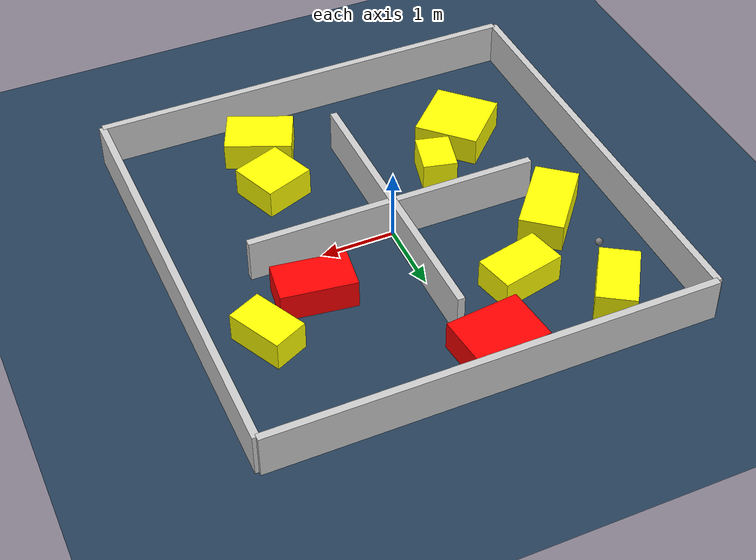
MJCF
<?xml version="1.0" ?>
<mujoco model="generated_environment">
  <option timestep="0.01" integrator="RK4" cone="elliptic"/>
  <default>
    <geom density="1"/>
  </default>
  <asset>
    <texture builtin="gradient" height="3072" rgb1="0.3 0.5 0.7" rgb2="0 0 0" type="skybox" width="512"/>
    <texture builtin="checker" height="300" mark="edge" markrgb="0.8 0.8 0.8" name="groundplane" rgb1="0.2 0.3 0.4" rgb2="0.1 0.2 0.3" type="2d" width="300"/>
    <material name="groundplane" reflectance="0.2" texrepeat="5 5" texture="groundplane" texuniform="true"/>
    <material name="robot" rgba="0.0 1.0 0.0 1"/>
  </asset>
  <worldbody>
    <light dir="0 0 -1" directional="true" pos="0 0 1.5"/>
    <geom condim="4" friction="1.0 0.005 0.001" material="groundplane" name="floor" size="0 0 0.05" type="plane"/>
    <body name="walls">
      <geom name="wall_1" condim="4" pos="-3.0 0.0 0.3" rgba="0.800000011920929 0.800000011920929 0.800000011920929 1.0" size="0.05 3.0 0.3" type="box"/>
      <geom name="wall_2" condim="4" pos="3.0 0.0 0.3" rgba="0.800000011920929 0.800000011920929 0.800000011920929 1.0" size="0.05 3.0 0.3" type="box"/>
      <geom name="wall_3" condim="4" pos="0.0 -3.0 0.3" rgba="0.800000011920929 0.800000011920929 0.800000011920929 1.0" size="3.0 0.05 0.3" type="box"/>
      <geom name="wall_4" condim="4" pos="0.0 3.0 0.3" rgba="0.800000011920929 0.800000011920929 0.800000011920929 1.0" size="3.0 0.05 0.3" type="box"/>
      <geom name="wall_5" condim="4" pos="1.0 0.0 0.3" rgba="0.800000011920929 0.800000011920929 0.800000011920929 1.0" size="1.0 0.05 0.3" type="box"/>
      <geom name="wall_6" condim="4" pos="-1.0 0.0 0.3" rgba="0.800000011920929 0.800000011920929 0.800000011920929 1.0" size="1.0 0.05 0.3" type="box"/>
      <geom name="wall_7" condim="4" pos="0.0 -1.0 0.3" rgba="0.800000011920929 0.800000011920929 0.800000011920929 1.0" size="0.05 1.0 0.3" type="box"/>
      <geom name="wall_8" condim="4" pos="0.0 1.0 0.3" rgba="0.800000011920929 0.800000011920929 0.800000011920929 1.0" size="0.05 1.0 0.3" type="box"/>
    </body>
    <body name="robot">
      <joint name="joint_x" type="slide" pos="0 0 0" axis="1 0 0"/>
      <joint name="joint_y" type="slide" pos="0 0 0" axis="0 1 0"/>
      <geom name="robot" type="sphere" pos="-2.276518228519156 1.4266247574986584 0.2" size="0.05" mass="5." friction="1.0 0.005 0.0001" condim="4"/>
      <site name="sensor_ball"/>
    </body>
    <body name="obstacle_1_movable">
      <geom name="obstacle_1_movable" condim="4" pos="2.1913350448443096 1.1695569440115525 0.2" euler="0 0 205.73634287875277" friction="1.0 0.005 0.001" rgba="1 1 0 1" size="0.24506867655174075 0.39645554166279284 0.2" type="box" mass="0.1"/>
      <joint type="free"/>
    </body>
    <body name="obstacle_2_movable">
      <geom name="obstacle_2_movable" condim="4" pos="1.1266552973029813 -1.4264211093084291 0.2" euler="0 0 200.90675526382788" friction="1.0 0.005 0.001" rgba="1 1 0 1" size="0.356123841229735 0.348990841071243 0.2" type="box" mass="0.1"/>
      <joint type="free"/>
    </body>
    <body name="obstacle_3_static">
      <geom name="obstacle_3_static" condim="4" pos="1.3856106781075765 0.6803557674984853 0.2" euler="0 0 352.11898355789515" friction="1.0 0.005 0.001" rgba="1 0 0 1" size="0.5028542029050441 0.29493018513366903 0.2" type="box"/>
    </body>
    <body name="obstacle_4_movable">
      <geom name="obstacle_4_movable" condim="4" pos="-2.0711032911614966 2.2237505297982034 0.2" euler="0 0 56.92137186399756" friction="1.0 0.005 0.001" rgba="1 1 0 1" size="0.45348711242384826 0.26445708564579234 0.2" type="box" mass="0.1"/>
      <joint type="free"/>
    </body>
    <body name="obstacle_5_movable">
      <geom name="obstacle_5_movable" condim="4" pos="-1.6575681809053413 -1.4930218545839444 0.2" euler="0 0 224.37797552474527" friction="1.0 0.005 0.001" rgba="1 1 0 1" size="0.4689372096188644 0.4460770178602379 0.2" type="box" mass="0.1"/>
      <joint type="free"/>
    </body>
    <body name="obstacle_6_movable">
      <geom name="obstacle_6_movable" condim="4" pos="-1.0432974475887729 -0.8801719552495819 0.2" euler="0 0 256.39335844895476" friction="1.0 0.005 0.001" rgba="1 1 0 1" size="0.2988228653409676 0.23510156473352992 0.2" type="box" mass="0.1"/>
      <joint type="free"/>
    </body>
    <body name="obstacle_7_movable">
      <geom name="obstacle_7_movable" condim="4" pos="-1.0840287609628836 1.4839007384148748 0.2" euler="0 0 102.95259736187232" friction="1.0 0.005 0.001" rgba="1 1 0 1" size="0.2753394972445579 0.44527925704625027 0.2" type="box" mass="0.1"/>
      <joint type="free"/>
    </body>
    <body name="obstacle_8_movable">
      <geom name="obstacle_8_movable" condim="4" pos="0.9984048309670097 -2.2938921044927985 0.2" euler="0 0 156.50834937351442" friction="1.0 0.005 0.001" rgba="1 1 0 1" size="0.4619362132156802 0.336222786625958 0.2" type="box" mass="0.1"/>
      <joint type="free"/>
    </body>
    <body name="obstacle_9_movable">
      <geom name="obstacle_9_movable" condim="4" pos="-1.9972866553769235 0.576388456801959 0.2" euler="0 0 140.35585154336493" friction="1.0 0.005 0.001" rgba="1 1 0 1" size="0.29816788167264957 0.5640295646134967 0.2" type="box" mass="0.1"/>
      <joint type="free"/>
    </body>
    <body name="obstacle_10_static">
      <geom name="obstacle_10_static" condim="4" pos="-0.2816600040074748 2.448716733577391 0.2" euler="0 0 186.09995378801926" friction="1.0 0.005 0.001" rgba="1 0 0 1" size="0.5015506878190261 0.3817464989242993 0.2" type="box"/>
    </body>
  </worldbody>
  <actuator>
    <motor name="actuator_x" joint="joint_x" gear="1" ctrlrange="-1 1"/>
    <motor name="actuator_y" joint="joint_y" gear="1" ctrlrange="-1 1"/>
  </actuator>
</mujoco>
